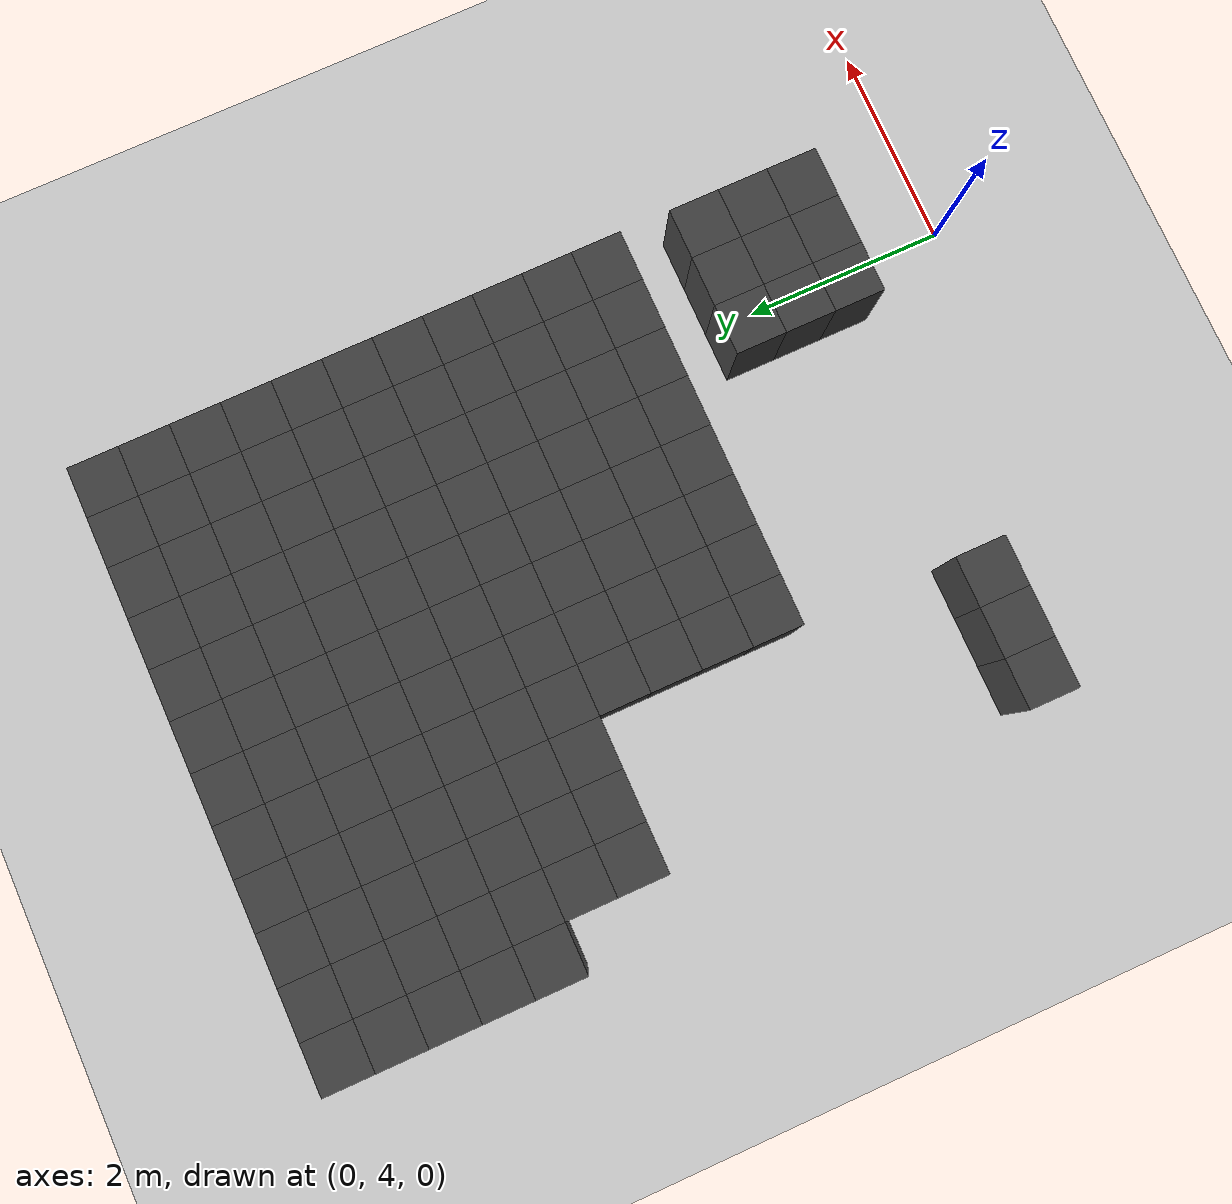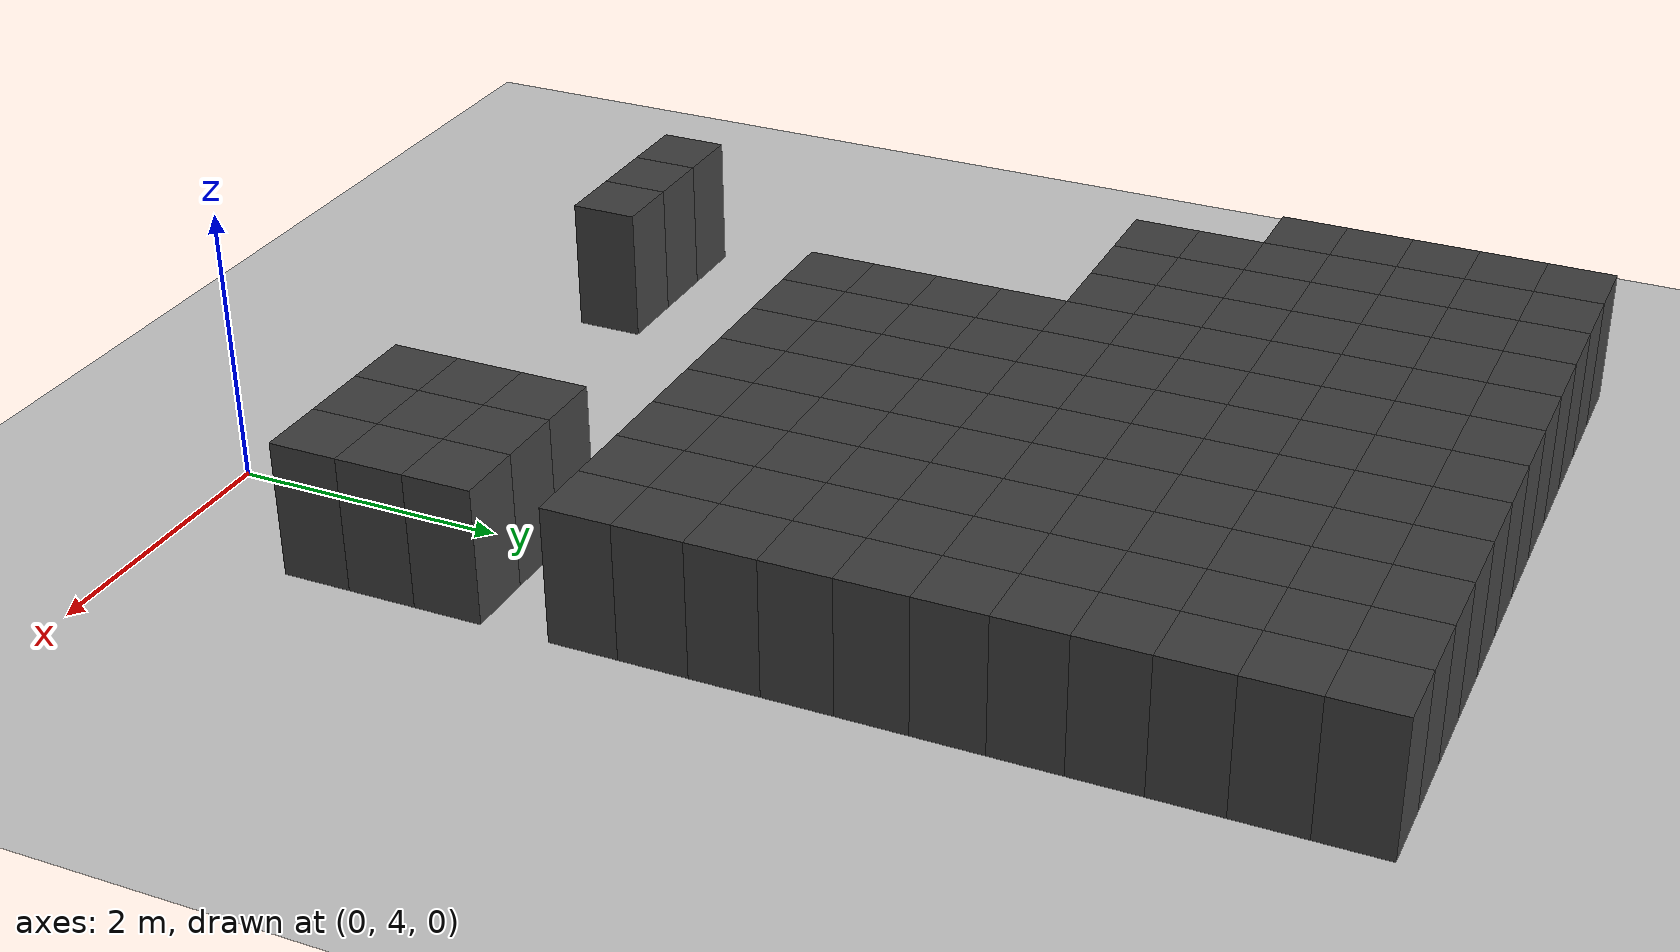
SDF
<sdf version="1.7">
 <world name="map_14495">
  <model name="ground_plane">
   <static>true</static>
   <link name="link">
    <collision name="collision">
     <geometry><plane><normal>0 0 1</normal><size>200 200</size></plane></geometry>
    </collision>
    <visual name="visual">
     <geometry><plane><normal>0 0 1</normal><size>200 200</size></plane></geometry>
     <material><ambient>0.8 0.8 0.8 1</ambient><diffuse>0.8 0.8 0.8 1</diffuse></material>
    </visual>
   </link>
  </model>
  <model name="maze_environment">
   <static>true</static>
   <link name="wall_15">
    <pose>-4.750 12.250 0.500 0 0 0</pose>
    <collision name="col"><geometry><box><size>0.5 0.5 1.0</size></box></geometry></collision>
    <visual name="vis">
     <geometry><box><size>0.5 0.5 1.0</size></box></geometry>
     <material><ambient>0.15 0.15 0.15 1</ambient><diffuse>0.25 0.25 0.25 1</diffuse></material>
    </visual>
   </link>
   <link name="wall_16">
    <pose>-4.250 12.250 0.500 0 0 0</pose>
    <collision name="col"><geometry><box><size>0.5 0.5 1.0</size></box></geometry></collision>
    <visual name="vis">
     <geometry><box><size>0.5 0.5 1.0</size></box></geometry>
     <material><ambient>0.15 0.15 0.15 1</ambient><diffuse>0.25 0.25 0.25 1</diffuse></material>
    </visual>
   </link>
   <link name="wall_17">
    <pose>-3.750 12.250 0.500 0 0 0</pose>
    <collision name="col"><geometry><box><size>0.5 0.5 1.0</size></box></geometry></collision>
    <visual name="vis">
     <geometry><box><size>0.5 0.5 1.0</size></box></geometry>
     <material><ambient>0.15 0.15 0.15 1</ambient><diffuse>0.25 0.25 0.25 1</diffuse></material>
    </visual>
   </link>
   <link name="wall_18">
    <pose>-3.250 12.250 0.500 0 0 0</pose>
    <collision name="col"><geometry><box><size>0.5 0.5 1.0</size></box></geometry></collision>
    <visual name="vis">
     <geometry><box><size>0.5 0.5 1.0</size></box></geometry>
     <material><ambient>0.15 0.15 0.15 1</ambient><diffuse>0.25 0.25 0.25 1</diffuse></material>
    </visual>
   </link>
   <link name="wall_19">
    <pose>-2.750 12.250 0.500 0 0 0</pose>
    <collision name="col"><geometry><box><size>0.5 0.5 1.0</size></box></geometry></collision>
    <visual name="vis">
     <geometry><box><size>0.5 0.5 1.0</size></box></geometry>
     <material><ambient>0.15 0.15 0.15 1</ambient><diffuse>0.25 0.25 0.25 1</diffuse></material>
    </visual>
   </link>
   <link name="wall_20">
    <pose>-2.250 12.250 0.500 0 0 0</pose>
    <collision name="col"><geometry><box><size>0.5 0.5 1.0</size></box></geometry></collision>
    <visual name="vis">
     <geometry><box><size>0.5 0.5 1.0</size></box></geometry>
     <material><ambient>0.15 0.15 0.15 1</ambient><diffuse>0.25 0.25 0.25 1</diffuse></material>
    </visual>
   </link>
   <link name="wall_21">
    <pose>-1.750 12.250 0.500 0 0 0</pose>
    <collision name="col"><geometry><box><size>0.5 0.5 1.0</size></box></geometry></collision>
    <visual name="vis">
     <geometry><box><size>0.5 0.5 1.0</size></box></geometry>
     <material><ambient>0.15 0.15 0.15 1</ambient><diffuse>0.25 0.25 0.25 1</diffuse></material>
    </visual>
   </link>
   <link name="wall_22">
    <pose>-1.250 12.250 0.500 0 0 0</pose>
    <collision name="col"><geometry><box><size>0.5 0.5 1.0</size></box></geometry></collision>
    <visual name="vis">
     <geometry><box><size>0.5 0.5 1.0</size></box></geometry>
     <material><ambient>0.15 0.15 0.15 1</ambient><diffuse>0.25 0.25 0.25 1</diffuse></material>
    </visual>
   </link>
   <link name="wall_23">
    <pose>-0.750 12.250 0.500 0 0 0</pose>
    <collision name="col"><geometry><box><size>0.5 0.5 1.0</size></box></geometry></collision>
    <visual name="vis">
     <geometry><box><size>0.5 0.5 1.0</size></box></geometry>
     <material><ambient>0.15 0.15 0.15 1</ambient><diffuse>0.25 0.25 0.25 1</diffuse></material>
    </visual>
   </link>
   <link name="wall_24">
    <pose>-0.250 12.250 0.500 0 0 0</pose>
    <collision name="col"><geometry><box><size>0.5 0.5 1.0</size></box></geometry></collision>
    <visual name="vis">
     <geometry><box><size>0.5 0.5 1.0</size></box></geometry>
     <material><ambient>0.15 0.15 0.15 1</ambient><diffuse>0.25 0.25 0.25 1</diffuse></material>
    </visual>
   </link>
   <link name="wall_25">
    <pose>0.250 12.250 0.500 0 0 0</pose>
    <collision name="col"><geometry><box><size>0.5 0.5 1.0</size></box></geometry></collision>
    <visual name="vis">
     <geometry><box><size>0.5 0.5 1.0</size></box></geometry>
     <material><ambient>0.15 0.15 0.15 1</ambient><diffuse>0.25 0.25 0.25 1</diffuse></material>
    </visual>
   </link>
   <link name="wall_26">
    <pose>0.750 12.250 0.500 0 0 0</pose>
    <collision name="col"><geometry><box><size>0.5 0.5 1.0</size></box></geometry></collision>
    <visual name="vis">
     <geometry><box><size>0.5 0.5 1.0</size></box></geometry>
     <material><ambient>0.15 0.15 0.15 1</ambient><diffuse>0.25 0.25 0.25 1</diffuse></material>
    </visual>
   </link>
   <link name="wall_62">
    <pose>-4.750 11.750 0.500 0 0 0</pose>
    <collision name="col"><geometry><box><size>0.5 0.5 1.0</size></box></geometry></collision>
    <visual name="vis">
     <geometry><box><size>0.5 0.5 1.0</size></box></geometry>
     <material><ambient>0.15 0.15 0.15 1</ambient><diffuse>0.25 0.25 0.25 1</diffuse></material>
    </visual>
   </link>
   <link name="wall_63">
    <pose>-4.250 11.750 0.500 0 0 0</pose>
    <collision name="col"><geometry><box><size>0.5 0.5 1.0</size></box></geometry></collision>
    <visual name="vis">
     <geometry><box><size>0.5 0.5 1.0</size></box></geometry>
     <material><ambient>0.15 0.15 0.15 1</ambient><diffuse>0.25 0.25 0.25 1</diffuse></material>
    </visual>
   </link>
   <link name="wall_64">
    <pose>-3.750 11.750 0.500 0 0 0</pose>
    <collision name="col"><geometry><box><size>0.5 0.5 1.0</size></box></geometry></collision>
    <visual name="vis">
     <geometry><box><size>0.5 0.5 1.0</size></box></geometry>
     <material><ambient>0.15 0.15 0.15 1</ambient><diffuse>0.25 0.25 0.25 1</diffuse></material>
    </visual>
   </link>
   <link name="wall_65">
    <pose>-3.250 11.750 0.500 0 0 0</pose>
    <collision name="col"><geometry><box><size>0.5 0.5 1.0</size></box></geometry></collision>
    <visual name="vis">
     <geometry><box><size>0.5 0.5 1.0</size></box></geometry>
     <material><ambient>0.15 0.15 0.15 1</ambient><diffuse>0.25 0.25 0.25 1</diffuse></material>
    </visual>
   </link>
   <link name="wall_66">
    <pose>-2.750 11.750 0.500 0 0 0</pose>
    <collision name="col"><geometry><box><size>0.5 0.5 1.0</size></box></geometry></collision>
    <visual name="vis">
     <geometry><box><size>0.5 0.5 1.0</size></box></geometry>
     <material><ambient>0.15 0.15 0.15 1</ambient><diffuse>0.25 0.25 0.25 1</diffuse></material>
    </visual>
   </link>
   <link name="wall_67">
    <pose>-2.250 11.750 0.500 0 0 0</pose>
    <collision name="col"><geometry><box><size>0.5 0.5 1.0</size></box></geometry></collision>
    <visual name="vis">
     <geometry><box><size>0.5 0.5 1.0</size></box></geometry>
     <material><ambient>0.15 0.15 0.15 1</ambient><diffuse>0.25 0.25 0.25 1</diffuse></material>
    </visual>
   </link>
   <link name="wall_68">
    <pose>-1.750 11.750 0.500 0 0 0</pose>
    <collision name="col"><geometry><box><size>0.5 0.5 1.0</size></box></geometry></collision>
    <visual name="vis">
     <geometry><box><size>0.5 0.5 1.0</size></box></geometry>
     <material><ambient>0.15 0.15 0.15 1</ambient><diffuse>0.25 0.25 0.25 1</diffuse></material>
    </visual>
   </link>
   <link name="wall_69">
    <pose>-1.250 11.750 0.500 0 0 0</pose>
    <collision name="col"><geometry><box><size>0.5 0.5 1.0</size></box></geometry></collision>
    <visual name="vis">
     <geometry><box><size>0.5 0.5 1.0</size></box></geometry>
     <material><ambient>0.15 0.15 0.15 1</ambient><diffuse>0.25 0.25 0.25 1</diffuse></material>
    </visual>
   </link>
   <link name="wall_70">
    <pose>-0.750 11.750 0.500 0 0 0</pose>
    <collision name="col"><geometry><box><size>0.5 0.5 1.0</size></box></geometry></collision>
    <visual name="vis">
     <geometry><box><size>0.5 0.5 1.0</size></box></geometry>
     <material><ambient>0.15 0.15 0.15 1</ambient><diffuse>0.25 0.25 0.25 1</diffuse></material>
    </visual>
   </link>
   <link name="wall_71">
    <pose>-0.250 11.750 0.500 0 0 0</pose>
    <collision name="col"><geometry><box><size>0.5 0.5 1.0</size></box></geometry></collision>
    <visual name="vis">
     <geometry><box><size>0.5 0.5 1.0</size></box></geometry>
     <material><ambient>0.15 0.15 0.15 1</ambient><diffuse>0.25 0.25 0.25 1</diffuse></material>
    </visual>
   </link>
   <link name="wall_72">
    <pose>0.250 11.750 0.500 0 0 0</pose>
    <collision name="col"><geometry><box><size>0.5 0.5 1.0</size></box></geometry></collision>
    <visual name="vis">
     <geometry><box><size>0.5 0.5 1.0</size></box></geometry>
     <material><ambient>0.15 0.15 0.15 1</ambient><diffuse>0.25 0.25 0.25 1</diffuse></material>
    </visual>
   </link>
   <link name="wall_73">
    <pose>0.750 11.750 0.500 0 0 0</pose>
    <collision name="col"><geometry><box><size>0.5 0.5 1.0</size></box></geometry></collision>
    <visual name="vis">
     <geometry><box><size>0.5 0.5 1.0</size></box></geometry>
     <material><ambient>0.15 0.15 0.15 1</ambient><diffuse>0.25 0.25 0.25 1</diffuse></material>
    </visual>
   </link>
   <link name="wall_109">
    <pose>-4.750 11.250 0.500 0 0 0</pose>
    <collision name="col"><geometry><box><size>0.5 0.5 1.0</size></box></geometry></collision>
    <visual name="vis">
     <geometry><box><size>0.5 0.5 1.0</size></box></geometry>
     <material><ambient>0.15 0.15 0.15 1</ambient><diffuse>0.25 0.25 0.25 1</diffuse></material>
    </visual>
   </link>
   <link name="wall_110">
    <pose>-4.250 11.250 0.500 0 0 0</pose>
    <collision name="col"><geometry><box><size>0.5 0.5 1.0</size></box></geometry></collision>
    <visual name="vis">
     <geometry><box><size>0.5 0.5 1.0</size></box></geometry>
     <material><ambient>0.15 0.15 0.15 1</ambient><diffuse>0.25 0.25 0.25 1</diffuse></material>
    </visual>
   </link>
   <link name="wall_111">
    <pose>-3.750 11.250 0.500 0 0 0</pose>
    <collision name="col"><geometry><box><size>0.5 0.5 1.0</size></box></geometry></collision>
    <visual name="vis">
     <geometry><box><size>0.5 0.5 1.0</size></box></geometry>
     <material><ambient>0.15 0.15 0.15 1</ambient><diffuse>0.25 0.25 0.25 1</diffuse></material>
    </visual>
   </link>
   <link name="wall_112">
    <pose>-3.250 11.250 0.500 0 0 0</pose>
    <collision name="col"><geometry><box><size>0.5 0.5 1.0</size></box></geometry></collision>
    <visual name="vis">
     <geometry><box><size>0.5 0.5 1.0</size></box></geometry>
     <material><ambient>0.15 0.15 0.15 1</ambient><diffuse>0.25 0.25 0.25 1</diffuse></material>
    </visual>
   </link>
   <link name="wall_113">
    <pose>-2.750 11.250 0.500 0 0 0</pose>
    <collision name="col"><geometry><box><size>0.5 0.5 1.0</size></box></geometry></collision>
    <visual name="vis">
     <geometry><box><size>0.5 0.5 1.0</size></box></geometry>
     <material><ambient>0.15 0.15 0.15 1</ambient><diffuse>0.25 0.25 0.25 1</diffuse></material>
    </visual>
   </link>
   <link name="wall_114">
    <pose>-2.250 11.250 0.500 0 0 0</pose>
    <collision name="col"><geometry><box><size>0.5 0.5 1.0</size></box></geometry></collision>
    <visual name="vis">
     <geometry><box><size>0.5 0.5 1.0</size></box></geometry>
     <material><ambient>0.15 0.15 0.15 1</ambient><diffuse>0.25 0.25 0.25 1</diffuse></material>
    </visual>
   </link>
   <link name="wall_115">
    <pose>-1.750 11.250 0.500 0 0 0</pose>
    <collision name="col"><geometry><box><size>0.5 0.5 1.0</size></box></geometry></collision>
    <visual name="vis">
     <geometry><box><size>0.5 0.5 1.0</size></box></geometry>
     <material><ambient>0.15 0.15 0.15 1</ambient><diffuse>0.25 0.25 0.25 1</diffuse></material>
    </visual>
   </link>
   <link name="wall_116">
    <pose>-1.250 11.250 0.500 0 0 0</pose>
    <collision name="col"><geometry><box><size>0.5 0.5 1.0</size></box></geometry></collision>
    <visual name="vis">
     <geometry><box><size>0.5 0.5 1.0</size></box></geometry>
     <material><ambient>0.15 0.15 0.15 1</ambient><diffuse>0.25 0.25 0.25 1</diffuse></material>
    </visual>
   </link>
   <link name="wall_117">
    <pose>-0.750 11.250 0.500 0 0 0</pose>
    <collision name="col"><geometry><box><size>0.5 0.5 1.0</size></box></geometry></collision>
    <visual name="vis">
     <geometry><box><size>0.5 0.5 1.0</size></box></geometry>
     <material><ambient>0.15 0.15 0.15 1</ambient><diffuse>0.25 0.25 0.25 1</diffuse></material>
    </visual>
   </link>
   <link name="wall_118">
    <pose>-0.250 11.250 0.500 0 0 0</pose>
    <collision name="col"><geometry><box><size>0.5 0.5 1.0</size></box></geometry></collision>
    <visual name="vis">
     <geometry><box><size>0.5 0.5 1.0</size></box></geometry>
     <material><ambient>0.15 0.15 0.15 1</ambient><diffuse>0.25 0.25 0.25 1</diffuse></material>
    </visual>
   </link>
   <link name="wall_119">
    <pose>0.250 11.250 0.500 0 0 0</pose>
    <collision name="col"><geometry><box><size>0.5 0.5 1.0</size></box></geometry></collision>
    <visual name="vis">
     <geometry><box><size>0.5 0.5 1.0</size></box></geometry>
     <material><ambient>0.15 0.15 0.15 1</ambient><diffuse>0.25 0.25 0.25 1</diffuse></material>
    </visual>
   </link>
   <link name="wall_120">
    <pose>0.750 11.250 0.500 0 0 0</pose>
    <collision name="col"><geometry><box><size>0.5 0.5 1.0</size></box></geometry></collision>
    <visual name="vis">
     <geometry><box><size>0.5 0.5 1.0</size></box></geometry>
     <material><ambient>0.15 0.15 0.15 1</ambient><diffuse>0.25 0.25 0.25 1</diffuse></material>
    </visual>
   </link>
   <link name="wall_148">
    <pose>-4.750 10.750 0.500 0 0 0</pose>
    <collision name="col"><geometry><box><size>0.5 0.5 1.0</size></box></geometry></collision>
    <visual name="vis">
     <geometry><box><size>0.5 0.5 1.0</size></box></geometry>
     <material><ambient>0.15 0.15 0.15 1</ambient><diffuse>0.25 0.25 0.25 1</diffuse></material>
    </visual>
   </link>
   <link name="wall_149">
    <pose>-4.250 10.750 0.500 0 0 0</pose>
    <collision name="col"><geometry><box><size>0.5 0.5 1.0</size></box></geometry></collision>
    <visual name="vis">
     <geometry><box><size>0.5 0.5 1.0</size></box></geometry>
     <material><ambient>0.15 0.15 0.15 1</ambient><diffuse>0.25 0.25 0.25 1</diffuse></material>
    </visual>
   </link>
   <link name="wall_150">
    <pose>-3.750 10.750 0.500 0 0 0</pose>
    <collision name="col"><geometry><box><size>0.5 0.5 1.0</size></box></geometry></collision>
    <visual name="vis">
     <geometry><box><size>0.5 0.5 1.0</size></box></geometry>
     <material><ambient>0.15 0.15 0.15 1</ambient><diffuse>0.25 0.25 0.25 1</diffuse></material>
    </visual>
   </link>
   <link name="wall_151">
    <pose>-3.250 10.750 0.500 0 0 0</pose>
    <collision name="col"><geometry><box><size>0.5 0.5 1.0</size></box></geometry></collision>
    <visual name="vis">
     <geometry><box><size>0.5 0.5 1.0</size></box></geometry>
     <material><ambient>0.15 0.15 0.15 1</ambient><diffuse>0.25 0.25 0.25 1</diffuse></material>
    </visual>
   </link>
   <link name="wall_152">
    <pose>-2.750 10.750 0.500 0 0 0</pose>
    <collision name="col"><geometry><box><size>0.5 0.5 1.0</size></box></geometry></collision>
    <visual name="vis">
     <geometry><box><size>0.5 0.5 1.0</size></box></geometry>
     <material><ambient>0.15 0.15 0.15 1</ambient><diffuse>0.25 0.25 0.25 1</diffuse></material>
    </visual>
   </link>
   <link name="wall_153">
    <pose>-2.250 10.750 0.500 0 0 0</pose>
    <collision name="col"><geometry><box><size>0.5 0.5 1.0</size></box></geometry></collision>
    <visual name="vis">
     <geometry><box><size>0.5 0.5 1.0</size></box></geometry>
     <material><ambient>0.15 0.15 0.15 1</ambient><diffuse>0.25 0.25 0.25 1</diffuse></material>
    </visual>
   </link>
   <link name="wall_154">
    <pose>-1.750 10.750 0.500 0 0 0</pose>
    <collision name="col"><geometry><box><size>0.5 0.5 1.0</size></box></geometry></collision>
    <visual name="vis">
     <geometry><box><size>0.5 0.5 1.0</size></box></geometry>
     <material><ambient>0.15 0.15 0.15 1</ambient><diffuse>0.25 0.25 0.25 1</diffuse></material>
    </visual>
   </link>
   <link name="wall_155">
    <pose>-1.250 10.750 0.500 0 0 0</pose>
    <collision name="col"><geometry><box><size>0.5 0.5 1.0</size></box></geometry></collision>
    <visual name="vis">
     <geometry><box><size>0.5 0.5 1.0</size></box></geometry>
     <material><ambient>0.15 0.15 0.15 1</ambient><diffuse>0.25 0.25 0.25 1</diffuse></material>
    </visual>
   </link>
   <link name="wall_156">
    <pose>-0.750 10.750 0.500 0 0 0</pose>
    <collision name="col"><geometry><box><size>0.5 0.5 1.0</size></box></geometry></collision>
    <visual name="vis">
     <geometry><box><size>0.5 0.5 1.0</size></box></geometry>
     <material><ambient>0.15 0.15 0.15 1</ambient><diffuse>0.25 0.25 0.25 1</diffuse></material>
    </visual>
   </link>
   <link name="wall_157">
    <pose>-0.250 10.750 0.500 0 0 0</pose>
    <collision name="col"><geometry><box><size>0.5 0.5 1.0</size></box></geometry></collision>
    <visual name="vis">
     <geometry><box><size>0.5 0.5 1.0</size></box></geometry>
     <material><ambient>0.15 0.15 0.15 1</ambient><diffuse>0.25 0.25 0.25 1</diffuse></material>
    </visual>
   </link>
   <link name="wall_158">
    <pose>0.250 10.750 0.500 0 0 0</pose>
    <collision name="col"><geometry><box><size>0.5 0.5 1.0</size></box></geometry></collision>
    <visual name="vis">
     <geometry><box><size>0.5 0.5 1.0</size></box></geometry>
     <material><ambient>0.15 0.15 0.15 1</ambient><diffuse>0.25 0.25 0.25 1</diffuse></material>
    </visual>
   </link>
   <link name="wall_159">
    <pose>0.750 10.750 0.500 0 0 0</pose>
    <collision name="col"><geometry><box><size>0.5 0.5 1.0</size></box></geometry></collision>
    <visual name="vis">
     <geometry><box><size>0.5 0.5 1.0</size></box></geometry>
     <material><ambient>0.15 0.15 0.15 1</ambient><diffuse>0.25 0.25 0.25 1</diffuse></material>
    </visual>
   </link>
   <link name="wall_189">
    <pose>-4.750 10.250 0.500 0 0 0</pose>
    <collision name="col"><geometry><box><size>0.5 0.5 1.0</size></box></geometry></collision>
    <visual name="vis">
     <geometry><box><size>0.5 0.5 1.0</size></box></geometry>
     <material><ambient>0.15 0.15 0.15 1</ambient><diffuse>0.25 0.25 0.25 1</diffuse></material>
    </visual>
   </link>
   <link name="wall_190">
    <pose>-4.250 10.250 0.500 0 0 0</pose>
    <collision name="col"><geometry><box><size>0.5 0.5 1.0</size></box></geometry></collision>
    <visual name="vis">
     <geometry><box><size>0.5 0.5 1.0</size></box></geometry>
     <material><ambient>0.15 0.15 0.15 1</ambient><diffuse>0.25 0.25 0.25 1</diffuse></material>
    </visual>
   </link>
   <link name="wall_191">
    <pose>-3.750 10.250 0.500 0 0 0</pose>
    <collision name="col"><geometry><box><size>0.5 0.5 1.0</size></box></geometry></collision>
    <visual name="vis">
     <geometry><box><size>0.5 0.5 1.0</size></box></geometry>
     <material><ambient>0.15 0.15 0.15 1</ambient><diffuse>0.25 0.25 0.25 1</diffuse></material>
    </visual>
   </link>
   <link name="wall_192">
    <pose>-3.250 10.250 0.500 0 0 0</pose>
    <collision name="col"><geometry><box><size>0.5 0.5 1.0</size></box></geometry></collision>
    <visual name="vis">
     <geometry><box><size>0.5 0.5 1.0</size></box></geometry>
     <material><ambient>0.15 0.15 0.15 1</ambient><diffuse>0.25 0.25 0.25 1</diffuse></material>
    </visual>
   </link>
   <link name="wall_193">
    <pose>-2.750 10.250 0.500 0 0 0</pose>
    <collision name="col"><geometry><box><size>0.5 0.5 1.0</size></box></geometry></collision>
    <visual name="vis">
     <geometry><box><size>0.5 0.5 1.0</size></box></geometry>
     <material><ambient>0.15 0.15 0.15 1</ambient><diffuse>0.25 0.25 0.25 1</diffuse></material>
    </visual>
   </link>
   <link name="wall_194">
    <pose>-2.250 10.250 0.500 0 0 0</pose>
    <collision name="col"><geometry><box><size>0.5 0.5 1.0</size></box></geometry></collision>
    <visual name="vis">
     <geometry><box><size>0.5 0.5 1.0</size></box></geometry>
     <material><ambient>0.15 0.15 0.15 1</ambient><diffuse>0.25 0.25 0.25 1</diffuse></material>
    </visual>
   </link>
   <link name="wall_195">
    <pose>-1.750 10.250 0.500 0 0 0</pose>
    <collision name="col"><geometry><box><size>0.5 0.5 1.0</size></box></geometry></collision>
    <visual name="vis">
     <geometry><box><size>0.5 0.5 1.0</size></box></geometry>
     <material><ambient>0.15 0.15 0.15 1</ambient><diffuse>0.25 0.25 0.25 1</diffuse></material>
    </visual>
   </link>
   <link name="wall_196">
    <pose>-1.250 10.250 0.500 0 0 0</pose>
    <collision name="col"><geometry><box><size>0.5 0.5 1.0</size></box></geometry></collision>
    <visual name="vis">
     <geometry><box><size>0.5 0.5 1.0</size></box></geometry>
     <material><ambient>0.15 0.15 0.15 1</ambient><diffuse>0.25 0.25 0.25 1</diffuse></material>
    </visual>
   </link>
   <link name="wall_197">
    <pose>-0.750 10.250 0.500 0 0 0</pose>
    <collision name="col"><geometry><box><size>0.5 0.5 1.0</size></box></geometry></collision>
    <visual name="vis">
     <geometry><box><size>0.5 0.5 1.0</size></box></geometry>
     <material><ambient>0.15 0.15 0.15 1</ambient><diffuse>0.25 0.25 0.25 1</diffuse></material>
    </visual>
   </link>
   <link name="wall_198">
    <pose>-0.250 10.250 0.500 0 0 0</pose>
    <collision name="col"><geometry><box><size>0.5 0.5 1.0</size></box></geometry></collision>
    <visual name="vis">
     <geometry><box><size>0.5 0.5 1.0</size></box></geometry>
     <material><ambient>0.15 0.15 0.15 1</ambient><diffuse>0.25 0.25 0.25 1</diffuse></material>
    </visual>
   </link>
   <link name="wall_199">
    <pose>0.250 10.250 0.500 0 0 0</pose>
    <collision name="col"><geometry><box><size>0.5 0.5 1.0</size></box></geometry></collision>
    <visual name="vis">
     <geometry><box><size>0.5 0.5 1.0</size></box></geometry>
     <material><ambient>0.15 0.15 0.15 1</ambient><diffuse>0.25 0.25 0.25 1</diffuse></material>
    </visual>
   </link>
   <link name="wall_200">
    <pose>0.750 10.250 0.500 0 0 0</pose>
    <collision name="col"><geometry><box><size>0.5 0.5 1.0</size></box></geometry></collision>
    <visual name="vis">
     <geometry><box><size>0.5 0.5 1.0</size></box></geometry>
     <material><ambient>0.15 0.15 0.15 1</ambient><diffuse>0.25 0.25 0.25 1</diffuse></material>
    </visual>
   </link>
   <link name="wall_231">
    <pose>-4.250 9.750 0.500 0 0 0</pose>
    <collision name="col"><geometry><box><size>0.5 0.5 1.0</size></box></geometry></collision>
    <visual name="vis">
     <geometry><box><size>0.5 0.5 1.0</size></box></geometry>
     <material><ambient>0.15 0.15 0.15 1</ambient><diffuse>0.25 0.25 0.25 1</diffuse></material>
    </visual>
   </link>
   <link name="wall_232">
    <pose>-3.750 9.750 0.500 0 0 0</pose>
    <collision name="col"><geometry><box><size>0.5 0.5 1.0</size></box></geometry></collision>
    <visual name="vis">
     <geometry><box><size>0.5 0.5 1.0</size></box></geometry>
     <material><ambient>0.15 0.15 0.15 1</ambient><diffuse>0.25 0.25 0.25 1</diffuse></material>
    </visual>
   </link>
   <link name="wall_233">
    <pose>-3.250 9.750 0.500 0 0 0</pose>
    <collision name="col"><geometry><box><size>0.5 0.5 1.0</size></box></geometry></collision>
    <visual name="vis">
     <geometry><box><size>0.5 0.5 1.0</size></box></geometry>
     <material><ambient>0.15 0.15 0.15 1</ambient><diffuse>0.25 0.25 0.25 1</diffuse></material>
    </visual>
   </link>
   <link name="wall_234">
    <pose>-2.750 9.750 0.500 0 0 0</pose>
    <collision name="col"><geometry><box><size>0.5 0.5 1.0</size></box></geometry></collision>
    <visual name="vis">
     <geometry><box><size>0.5 0.5 1.0</size></box></geometry>
     <material><ambient>0.15 0.15 0.15 1</ambient><diffuse>0.25 0.25 0.25 1</diffuse></material>
    </visual>
   </link>
   <link name="wall_235">
    <pose>-2.250 9.750 0.500 0 0 0</pose>
    <collision name="col"><geometry><box><size>0.5 0.5 1.0</size></box></geometry></collision>
    <visual name="vis">
     <geometry><box><size>0.5 0.5 1.0</size></box></geometry>
     <material><ambient>0.15 0.15 0.15 1</ambient><diffuse>0.25 0.25 0.25 1</diffuse></material>
    </visual>
   </link>
   <link name="wall_236">
    <pose>-1.750 9.750 0.500 0 0 0</pose>
    <collision name="col"><geometry><box><size>0.5 0.5 1.0</size></box></geometry></collision>
    <visual name="vis">
     <geometry><box><size>0.5 0.5 1.0</size></box></geometry>
     <material><ambient>0.15 0.15 0.15 1</ambient><diffuse>0.25 0.25 0.25 1</diffuse></material>
    </visual>
   </link>
   <link name="wall_237">
    <pose>-1.250 9.750 0.500 0 0 0</pose>
    <collision name="col"><geometry><box><size>0.5 0.5 1.0</size></box></geometry></collision>
    <visual name="vis">
     <geometry><box><size>0.5 0.5 1.0</size></box></geometry>
     <material><ambient>0.15 0.15 0.15 1</ambient><diffuse>0.25 0.25 0.25 1</diffuse></material>
    </visual>
   </link>
   <link name="wall_238">
    <pose>-0.750 9.750 0.500 0 0 0</pose>
    <collision name="col"><geometry><box><size>0.5 0.5 1.0</size></box></geometry></collision>
    <visual name="vis">
     <geometry><box><size>0.5 0.5 1.0</size></box></geometry>
     <material><ambient>0.15 0.15 0.15 1</ambient><diffuse>0.25 0.25 0.25 1</diffuse></material>
    </visual>
   </link>
   <link name="wall_239">
    <pose>-0.250 9.750 0.500 0 0 0</pose>
    <collision name="col"><geometry><box><size>0.5 0.5 1.0</size></box></geometry></collision>
    <visual name="vis">
     <geometry><box><size>0.5 0.5 1.0</size></box></geometry>
     <material><ambient>0.15 0.15 0.15 1</ambient><diffuse>0.25 0.25 0.25 1</diffuse></material>
    </visual>
   </link>
   <link name="wall_240">
    <pose>0.250 9.750 0.500 0 0 0</pose>
    <collision name="col"><geometry><box><size>0.5 0.5 1.0</size></box></geometry></collision>
    <visual name="vis">
     <geometry><box><size>0.5 0.5 1.0</size></box></geometry>
     <material><ambient>0.15 0.15 0.15 1</ambient><diffuse>0.25 0.25 0.25 1</diffuse></material>
    </visual>
   </link>
   <link name="wall_241">
    <pose>0.750 9.750 0.500 0 0 0</pose>
    <collision name="col"><geometry><box><size>0.5 0.5 1.0</size></box></geometry></collision>
    <visual name="vis">
     <geometry><box><size>0.5 0.5 1.0</size></box></geometry>
     <material><ambient>0.15 0.15 0.15 1</ambient><diffuse>0.25 0.25 0.25 1</diffuse></material>
    </visual>
   </link>
   <link name="wall_268">
    <pose>-4.250 9.250 0.500 0 0 0</pose>
    <collision name="col"><geometry><box><size>0.5 0.5 1.0</size></box></geometry></collision>
    <visual name="vis">
     <geometry><box><size>0.5 0.5 1.0</size></box></geometry>
     <material><ambient>0.15 0.15 0.15 1</ambient><diffuse>0.25 0.25 0.25 1</diffuse></material>
    </visual>
   </link>
   <link name="wall_269">
    <pose>-3.750 9.250 0.500 0 0 0</pose>
    <collision name="col"><geometry><box><size>0.5 0.5 1.0</size></box></geometry></collision>
    <visual name="vis">
     <geometry><box><size>0.5 0.5 1.0</size></box></geometry>
     <material><ambient>0.15 0.15 0.15 1</ambient><diffuse>0.25 0.25 0.25 1</diffuse></material>
    </visual>
   </link>
   <link name="wall_270">
    <pose>-3.250 9.250 0.500 0 0 0</pose>
    <collision name="col"><geometry><box><size>0.5 0.5 1.0</size></box></geometry></collision>
    <visual name="vis">
     <geometry><box><size>0.5 0.5 1.0</size></box></geometry>
     <material><ambient>0.15 0.15 0.15 1</ambient><diffuse>0.25 0.25 0.25 1</diffuse></material>
    </visual>
   </link>
   <link name="wall_271">
    <pose>-2.750 9.250 0.500 0 0 0</pose>
    <collision name="col"><geometry><box><size>0.5 0.5 1.0</size></box></geometry></collision>
    <visual name="vis">
     <geometry><box><size>0.5 0.5 1.0</size></box></geometry>
     <material><ambient>0.15 0.15 0.15 1</ambient><diffuse>0.25 0.25 0.25 1</diffuse></material>
    </visual>
   </link>
   <link name="wall_272">
    <pose>-2.250 9.250 0.500 0 0 0</pose>
    <collision name="col"><geometry><box><size>0.5 0.5 1.0</size></box></geometry></collision>
    <visual name="vis">
     <geometry><box><size>0.5 0.5 1.0</size></box></geometry>
     <material><ambient>0.15 0.15 0.15 1</ambient><diffuse>0.25 0.25 0.25 1</diffuse></material>
    </visual>
   </link>
   <link name="wall_273">
    <pose>-1.750 9.250 0.500 0 0 0</pose>
    <collision name="col"><geometry><box><size>0.5 0.5 1.0</size></box></geometry></collision>
    <visual name="vis">
     <geometry><box><size>0.5 0.5 1.0</size></box></geometry>
     <material><ambient>0.15 0.15 0.15 1</ambient><diffuse>0.25 0.25 0.25 1</diffuse></material>
    </visual>
   </link>
   <link name="wall_274">
    <pose>-1.250 9.250 0.500 0 0 0</pose>
    <collision name="col"><geometry><box><size>0.5 0.5 1.0</size></box></geometry></collision>
    <visual name="vis">
     <geometry><box><size>0.5 0.5 1.0</size></box></geometry>
     <material><ambient>0.15 0.15 0.15 1</ambient><diffuse>0.25 0.25 0.25 1</diffuse></material>
    </visual>
   </link>
   <link name="wall_275">
    <pose>-0.750 9.250 0.500 0 0 0</pose>
    <collision name="col"><geometry><box><size>0.5 0.5 1.0</size></box></geometry></collision>
    <visual name="vis">
     <geometry><box><size>0.5 0.5 1.0</size></box></geometry>
     <material><ambient>0.15 0.15 0.15 1</ambient><diffuse>0.25 0.25 0.25 1</diffuse></material>
    </visual>
   </link>
   <link name="wall_276">
    <pose>-0.250 9.250 0.500 0 0 0</pose>
    <collision name="col"><geometry><box><size>0.5 0.5 1.0</size></box></geometry></collision>
    <visual name="vis">
     <geometry><box><size>0.5 0.5 1.0</size></box></geometry>
     <material><ambient>0.15 0.15 0.15 1</ambient><diffuse>0.25 0.25 0.25 1</diffuse></material>
    </visual>
   </link>
   <link name="wall_277">
    <pose>0.250 9.250 0.500 0 0 0</pose>
    <collision name="col"><geometry><box><size>0.5 0.5 1.0</size></box></geometry></collision>
    <visual name="vis">
     <geometry><box><size>0.5 0.5 1.0</size></box></geometry>
     <material><ambient>0.15 0.15 0.15 1</ambient><diffuse>0.25 0.25 0.25 1</diffuse></material>
    </visual>
   </link>
   <link name="wall_278">
    <pose>0.750 9.250 0.500 0 0 0</pose>
    <collision name="col"><geometry><box><size>0.5 0.5 1.0</size></box></geometry></collision>
    <visual name="vis">
     <geometry><box><size>0.5 0.5 1.0</size></box></geometry>
     <material><ambient>0.15 0.15 0.15 1</ambient><diffuse>0.25 0.25 0.25 1</diffuse></material>
    </visual>
   </link>
   <link name="wall_309">
    <pose>-2.750 8.750 0.500 0 0 0</pose>
    <collision name="col"><geometry><box><size>0.5 0.5 1.0</size></box></geometry></collision>
    <visual name="vis">
     <geometry><box><size>0.5 0.5 1.0</size></box></geometry>
     <material><ambient>0.15 0.15 0.15 1</ambient><diffuse>0.25 0.25 0.25 1</diffuse></material>
    </visual>
   </link>
   <link name="wall_310">
    <pose>-2.250 8.750 0.500 0 0 0</pose>
    <collision name="col"><geometry><box><size>0.5 0.5 1.0</size></box></geometry></collision>
    <visual name="vis">
     <geometry><box><size>0.5 0.5 1.0</size></box></geometry>
     <material><ambient>0.15 0.15 0.15 1</ambient><diffuse>0.25 0.25 0.25 1</diffuse></material>
    </visual>
   </link>
   <link name="wall_311">
    <pose>-1.750 8.750 0.500 0 0 0</pose>
    <collision name="col"><geometry><box><size>0.5 0.5 1.0</size></box></geometry></collision>
    <visual name="vis">
     <geometry><box><size>0.5 0.5 1.0</size></box></geometry>
     <material><ambient>0.15 0.15 0.15 1</ambient><diffuse>0.25 0.25 0.25 1</diffuse></material>
    </visual>
   </link>
   <link name="wall_312">
    <pose>-1.250 8.750 0.500 0 0 0</pose>
    <collision name="col"><geometry><box><size>0.5 0.5 1.0</size></box></geometry></collision>
    <visual name="vis">
     <geometry><box><size>0.5 0.5 1.0</size></box></geometry>
     <material><ambient>0.15 0.15 0.15 1</ambient><diffuse>0.25 0.25 0.25 1</diffuse></material>
    </visual>
   </link>
   <link name="wall_313">
    <pose>-0.750 8.750 0.500 0 0 0</pose>
    <collision name="col"><geometry><box><size>0.5 0.5 1.0</size></box></geometry></collision>
    <visual name="vis">
     <geometry><box><size>0.5 0.5 1.0</size></box></geometry>
     <material><ambient>0.15 0.15 0.15 1</ambient><diffuse>0.25 0.25 0.25 1</diffuse></material>
    </visual>
   </link>
   <link name="wall_314">
    <pose>-0.250 8.750 0.500 0 0 0</pose>
    <collision name="col"><geometry><box><size>0.5 0.5 1.0</size></box></geometry></collision>
    <visual name="vis">
     <geometry><box><size>0.5 0.5 1.0</size></box></geometry>
     <material><ambient>0.15 0.15 0.15 1</ambient><diffuse>0.25 0.25 0.25 1</diffuse></material>
    </visual>
   </link>
   <link name="wall_315">
    <pose>0.250 8.750 0.500 0 0 0</pose>
    <collision name="col"><geometry><box><size>0.5 0.5 1.0</size></box></geometry></collision>
    <visual name="vis">
     <geometry><box><size>0.5 0.5 1.0</size></box></geometry>
     <material><ambient>0.15 0.15 0.15 1</ambient><diffuse>0.25 0.25 0.25 1</diffuse></material>
    </visual>
   </link>
   <link name="wall_316">
    <pose>0.750 8.750 0.500 0 0 0</pose>
    <collision name="col"><geometry><box><size>0.5 0.5 1.0</size></box></geometry></collision>
    <visual name="vis">
     <geometry><box><size>0.5 0.5 1.0</size></box></geometry>
     <material><ambient>0.15 0.15 0.15 1</ambient><diffuse>0.25 0.25 0.25 1</diffuse></material>
    </visual>
   </link>
   <link name="wall_347">
    <pose>-2.750 8.250 0.500 0 0 0</pose>
    <collision name="col"><geometry><box><size>0.5 0.5 1.0</size></box></geometry></collision>
    <visual name="vis">
     <geometry><box><size>0.5 0.5 1.0</size></box></geometry>
     <material><ambient>0.15 0.15 0.15 1</ambient><diffuse>0.25 0.25 0.25 1</diffuse></material>
    </visual>
   </link>
   <link name="wall_348">
    <pose>-2.250 8.250 0.500 0 0 0</pose>
    <collision name="col"><geometry><box><size>0.5 0.5 1.0</size></box></geometry></collision>
    <visual name="vis">
     <geometry><box><size>0.5 0.5 1.0</size></box></geometry>
     <material><ambient>0.15 0.15 0.15 1</ambient><diffuse>0.25 0.25 0.25 1</diffuse></material>
    </visual>
   </link>
   <link name="wall_349">
    <pose>-1.750 8.250 0.500 0 0 0</pose>
    <collision name="col"><geometry><box><size>0.5 0.5 1.0</size></box></geometry></collision>
    <visual name="vis">
     <geometry><box><size>0.5 0.5 1.0</size></box></geometry>
     <material><ambient>0.15 0.15 0.15 1</ambient><diffuse>0.25 0.25 0.25 1</diffuse></material>
    </visual>
   </link>
   <link name="wall_350">
    <pose>-1.250 8.250 0.500 0 0 0</pose>
    <collision name="col"><geometry><box><size>0.5 0.5 1.0</size></box></geometry></collision>
    <visual name="vis">
     <geometry><box><size>0.5 0.5 1.0</size></box></geometry>
     <material><ambient>0.15 0.15 0.15 1</ambient><diffuse>0.25 0.25 0.25 1</diffuse></material>
    </visual>
   </link>
   <link name="wall_351">
    <pose>-0.750 8.250 0.500 0 0 0</pose>
    <collision name="col"><geometry><box><size>0.5 0.5 1.0</size></box></geometry></collision>
    <visual name="vis">
     <geometry><box><size>0.5 0.5 1.0</size></box></geometry>
     <material><ambient>0.15 0.15 0.15 1</ambient><diffuse>0.25 0.25 0.25 1</diffuse></material>
    </visual>
   </link>
   <link name="wall_352">
    <pose>-0.250 8.250 0.500 0 0 0</pose>
    <collision name="col"><geometry><box><size>0.5 0.5 1.0</size></box></geometry></collision>
    <visual name="vis">
     <geometry><box><size>0.5 0.5 1.0</size></box></geometry>
     <material><ambient>0.15 0.15 0.15 1</ambient><diffuse>0.25 0.25 0.25 1</diffuse></material>
    </visual>
   </link>
   <link name="wall_353">
    <pose>0.250 8.250 0.500 0 0 0</pose>
    <collision name="col"><geometry><box><size>0.5 0.5 1.0</size></box></geometry></collision>
    <visual name="vis">
     <geometry><box><size>0.5 0.5 1.0</size></box></geometry>
     <material><ambient>0.15 0.15 0.15 1</ambient><diffuse>0.25 0.25 0.25 1</diffuse></material>
    </visual>
   </link>
   <link name="wall_354">
    <pose>0.750 8.250 0.500 0 0 0</pose>
    <collision name="col"><geometry><box><size>0.5 0.5 1.0</size></box></geometry></collision>
    <visual name="vis">
     <geometry><box><size>0.5 0.5 1.0</size></box></geometry>
     <material><ambient>0.15 0.15 0.15 1</ambient><diffuse>0.25 0.25 0.25 1</diffuse></material>
    </visual>
   </link>
   <link name="wall_385">
    <pose>-2.750 7.750 0.500 0 0 0</pose>
    <collision name="col"><geometry><box><size>0.5 0.5 1.0</size></box></geometry></collision>
    <visual name="vis">
     <geometry><box><size>0.5 0.5 1.0</size></box></geometry>
     <material><ambient>0.15 0.15 0.15 1</ambient><diffuse>0.25 0.25 0.25 1</diffuse></material>
    </visual>
   </link>
   <link name="wall_386">
    <pose>-2.250 7.750 0.500 0 0 0</pose>
    <collision name="col"><geometry><box><size>0.5 0.5 1.0</size></box></geometry></collision>
    <visual name="vis">
     <geometry><box><size>0.5 0.5 1.0</size></box></geometry>
     <material><ambient>0.15 0.15 0.15 1</ambient><diffuse>0.25 0.25 0.25 1</diffuse></material>
    </visual>
   </link>
   <link name="wall_387">
    <pose>-1.750 7.750 0.500 0 0 0</pose>
    <collision name="col"><geometry><box><size>0.5 0.5 1.0</size></box></geometry></collision>
    <visual name="vis">
     <geometry><box><size>0.5 0.5 1.0</size></box></geometry>
     <material><ambient>0.15 0.15 0.15 1</ambient><diffuse>0.25 0.25 0.25 1</diffuse></material>
    </visual>
   </link>
   <link name="wall_388">
    <pose>-1.250 7.750 0.500 0 0 0</pose>
    <collision name="col"><geometry><box><size>0.5 0.5 1.0</size></box></geometry></collision>
    <visual name="vis">
     <geometry><box><size>0.5 0.5 1.0</size></box></geometry>
     <material><ambient>0.15 0.15 0.15 1</ambient><diffuse>0.25 0.25 0.25 1</diffuse></material>
    </visual>
   </link>
   <link name="wall_389">
    <pose>-0.750 7.750 0.500 0 0 0</pose>
    <collision name="col"><geometry><box><size>0.5 0.5 1.0</size></box></geometry></collision>
    <visual name="vis">
     <geometry><box><size>0.5 0.5 1.0</size></box></geometry>
     <material><ambient>0.15 0.15 0.15 1</ambient><diffuse>0.25 0.25 0.25 1</diffuse></material>
    </visual>
   </link>
   <link name="wall_390">
    <pose>-0.250 7.750 0.500 0 0 0</pose>
    <collision name="col"><geometry><box><size>0.5 0.5 1.0</size></box></geometry></collision>
    <visual name="vis">
     <geometry><box><size>0.5 0.5 1.0</size></box></geometry>
     <material><ambient>0.15 0.15 0.15 1</ambient><diffuse>0.25 0.25 0.25 1</diffuse></material>
    </visual>
   </link>
   <link name="wall_391">
    <pose>0.250 7.750 0.500 0 0 0</pose>
    <collision name="col"><geometry><box><size>0.5 0.5 1.0</size></box></geometry></collision>
    <visual name="vis">
     <geometry><box><size>0.5 0.5 1.0</size></box></geometry>
     <material><ambient>0.15 0.15 0.15 1</ambient><diffuse>0.25 0.25 0.25 1</diffuse></material>
    </visual>
   </link>
   <link name="wall_392">
    <pose>0.750 7.750 0.500 0 0 0</pose>
    <collision name="col"><geometry><box><size>0.5 0.5 1.0</size></box></geometry></collision>
    <visual name="vis">
     <geometry><box><size>0.5 0.5 1.0</size></box></geometry>
     <material><ambient>0.15 0.15 0.15 1</ambient><diffuse>0.25 0.25 0.25 1</diffuse></material>
    </visual>
   </link>
   <link name="wall_420">
    <pose>-2.750 7.250 0.500 0 0 0</pose>
    <collision name="col"><geometry><box><size>0.5 0.5 1.0</size></box></geometry></collision>
    <visual name="vis">
     <geometry><box><size>0.5 0.5 1.0</size></box></geometry>
     <material><ambient>0.15 0.15 0.15 1</ambient><diffuse>0.25 0.25 0.25 1</diffuse></material>
    </visual>
   </link>
   <link name="wall_421">
    <pose>-2.250 7.250 0.500 0 0 0</pose>
    <collision name="col"><geometry><box><size>0.5 0.5 1.0</size></box></geometry></collision>
    <visual name="vis">
     <geometry><box><size>0.5 0.5 1.0</size></box></geometry>
     <material><ambient>0.15 0.15 0.15 1</ambient><diffuse>0.25 0.25 0.25 1</diffuse></material>
    </visual>
   </link>
   <link name="wall_422">
    <pose>-1.750 7.250 0.500 0 0 0</pose>
    <collision name="col"><geometry><box><size>0.5 0.5 1.0</size></box></geometry></collision>
    <visual name="vis">
     <geometry><box><size>0.5 0.5 1.0</size></box></geometry>
     <material><ambient>0.15 0.15 0.15 1</ambient><diffuse>0.25 0.25 0.25 1</diffuse></material>
    </visual>
   </link>
   <link name="wall_423">
    <pose>-1.250 7.250 0.500 0 0 0</pose>
    <collision name="col"><geometry><box><size>0.5 0.5 1.0</size></box></geometry></collision>
    <visual name="vis">
     <geometry><box><size>0.5 0.5 1.0</size></box></geometry>
     <material><ambient>0.15 0.15 0.15 1</ambient><diffuse>0.25 0.25 0.25 1</diffuse></material>
    </visual>
   </link>
   <link name="wall_424">
    <pose>-0.750 7.250 0.500 0 0 0</pose>
    <collision name="col"><geometry><box><size>0.5 0.5 1.0</size></box></geometry></collision>
    <visual name="vis">
     <geometry><box><size>0.5 0.5 1.0</size></box></geometry>
     <material><ambient>0.15 0.15 0.15 1</ambient><diffuse>0.25 0.25 0.25 1</diffuse></material>
    </visual>
   </link>
   <link name="wall_425">
    <pose>-0.250 7.250 0.500 0 0 0</pose>
    <collision name="col"><geometry><box><size>0.5 0.5 1.0</size></box></geometry></collision>
    <visual name="vis">
     <geometry><box><size>0.5 0.5 1.0</size></box></geometry>
     <material><ambient>0.15 0.15 0.15 1</ambient><diffuse>0.25 0.25 0.25 1</diffuse></material>
    </visual>
   </link>
   <link name="wall_426">
    <pose>0.250 7.250 0.500 0 0 0</pose>
    <collision name="col"><geometry><box><size>0.5 0.5 1.0</size></box></geometry></collision>
    <visual name="vis">
     <geometry><box><size>0.5 0.5 1.0</size></box></geometry>
     <material><ambient>0.15 0.15 0.15 1</ambient><diffuse>0.25 0.25 0.25 1</diffuse></material>
    </visual>
   </link>
   <link name="wall_427">
    <pose>0.750 7.250 0.500 0 0 0</pose>
    <collision name="col"><geometry><box><size>0.5 0.5 1.0</size></box></geometry></collision>
    <visual name="vis">
     <geometry><box><size>0.5 0.5 1.0</size></box></geometry>
     <material><ambient>0.15 0.15 0.15 1</ambient><diffuse>0.25 0.25 0.25 1</diffuse></material>
    </visual>
   </link>
   <link name="wall_480">
    <pose>-0.250 6.250 0.500 0 0 0</pose>
    <collision name="col"><geometry><box><size>0.5 0.5 1.0</size></box></geometry></collision>
    <visual name="vis">
     <geometry><box><size>0.5 0.5 1.0</size></box></geometry>
     <material><ambient>0.15 0.15 0.15 1</ambient><diffuse>0.25 0.25 0.25 1</diffuse></material>
    </visual>
   </link>
   <link name="wall_481">
    <pose>0.250 6.250 0.500 0 0 0</pose>
    <collision name="col"><geometry><box><size>0.5 0.5 1.0</size></box></geometry></collision>
    <visual name="vis">
     <geometry><box><size>0.5 0.5 1.0</size></box></geometry>
     <material><ambient>0.15 0.15 0.15 1</ambient><diffuse>0.25 0.25 0.25 1</diffuse></material>
    </visual>
   </link>
   <link name="wall_482">
    <pose>0.750 6.250 0.500 0 0 0</pose>
    <collision name="col"><geometry><box><size>0.5 0.5 1.0</size></box></geometry></collision>
    <visual name="vis">
     <geometry><box><size>0.5 0.5 1.0</size></box></geometry>
     <material><ambient>0.15 0.15 0.15 1</ambient><diffuse>0.25 0.25 0.25 1</diffuse></material>
    </visual>
   </link>
   <link name="wall_510">
    <pose>-0.250 5.750 0.500 0 0 0</pose>
    <collision name="col"><geometry><box><size>0.5 0.5 1.0</size></box></geometry></collision>
    <visual name="vis">
     <geometry><box><size>0.5 0.5 1.0</size></box></geometry>
     <material><ambient>0.15 0.15 0.15 1</ambient><diffuse>0.25 0.25 0.25 1</diffuse></material>
    </visual>
   </link>
   <link name="wall_511">
    <pose>0.250 5.750 0.500 0 0 0</pose>
    <collision name="col"><geometry><box><size>0.5 0.5 1.0</size></box></geometry></collision>
    <visual name="vis">
     <geometry><box><size>0.5 0.5 1.0</size></box></geometry>
     <material><ambient>0.15 0.15 0.15 1</ambient><diffuse>0.25 0.25 0.25 1</diffuse></material>
    </visual>
   </link>
   <link name="wall_512">
    <pose>0.750 5.750 0.500 0 0 0</pose>
    <collision name="col"><geometry><box><size>0.5 0.5 1.0</size></box></geometry></collision>
    <visual name="vis">
     <geometry><box><size>0.5 0.5 1.0</size></box></geometry>
     <material><ambient>0.15 0.15 0.15 1</ambient><diffuse>0.25 0.25 0.25 1</diffuse></material>
    </visual>
   </link>
   <link name="wall_536">
    <pose>-4.250 5.250 0.500 0 0 0</pose>
    <collision name="col"><geometry><box><size>0.5 0.5 1.0</size></box></geometry></collision>
    <visual name="vis">
     <geometry><box><size>0.5 0.5 1.0</size></box></geometry>
     <material><ambient>0.15 0.15 0.15 1</ambient><diffuse>0.25 0.25 0.25 1</diffuse></material>
    </visual>
   </link>
   <link name="wall_537">
    <pose>-3.750 5.250 0.500 0 0 0</pose>
    <collision name="col"><geometry><box><size>0.5 0.5 1.0</size></box></geometry></collision>
    <visual name="vis">
     <geometry><box><size>0.5 0.5 1.0</size></box></geometry>
     <material><ambient>0.15 0.15 0.15 1</ambient><diffuse>0.25 0.25 0.25 1</diffuse></material>
    </visual>
   </link>
   <link name="wall_538">
    <pose>-3.250 5.250 0.500 0 0 0</pose>
    <collision name="col"><geometry><box><size>0.5 0.5 1.0</size></box></geometry></collision>
    <visual name="vis">
     <geometry><box><size>0.5 0.5 1.0</size></box></geometry>
     <material><ambient>0.15 0.15 0.15 1</ambient><diffuse>0.25 0.25 0.25 1</diffuse></material>
    </visual>
   </link>
   <link name="wall_539">
    <pose>-0.250 5.250 0.500 0 0 0</pose>
    <collision name="col"><geometry><box><size>0.5 0.5 1.0</size></box></geometry></collision>
    <visual name="vis">
     <geometry><box><size>0.5 0.5 1.0</size></box></geometry>
     <material><ambient>0.15 0.15 0.15 1</ambient><diffuse>0.25 0.25 0.25 1</diffuse></material>
    </visual>
   </link>
   <link name="wall_540">
    <pose>0.250 5.250 0.500 0 0 0</pose>
    <collision name="col"><geometry><box><size>0.5 0.5 1.0</size></box></geometry></collision>
    <visual name="vis">
     <geometry><box><size>0.5 0.5 1.0</size></box></geometry>
     <material><ambient>0.15 0.15 0.15 1</ambient><diffuse>0.25 0.25 0.25 1</diffuse></material>
    </visual>
   </link>
   <link name="wall_541">
    <pose>0.750 5.250 0.500 0 0 0</pose>
    <collision name="col"><geometry><box><size>0.5 0.5 1.0</size></box></geometry></collision>
    <visual name="vis">
     <geometry><box><size>0.5 0.5 1.0</size></box></geometry>
     <material><ambient>0.15 0.15 0.15 1</ambient><diffuse>0.25 0.25 0.25 1</diffuse></material>
    </visual>
   </link>
  </model>
 </world>
</sdf>
